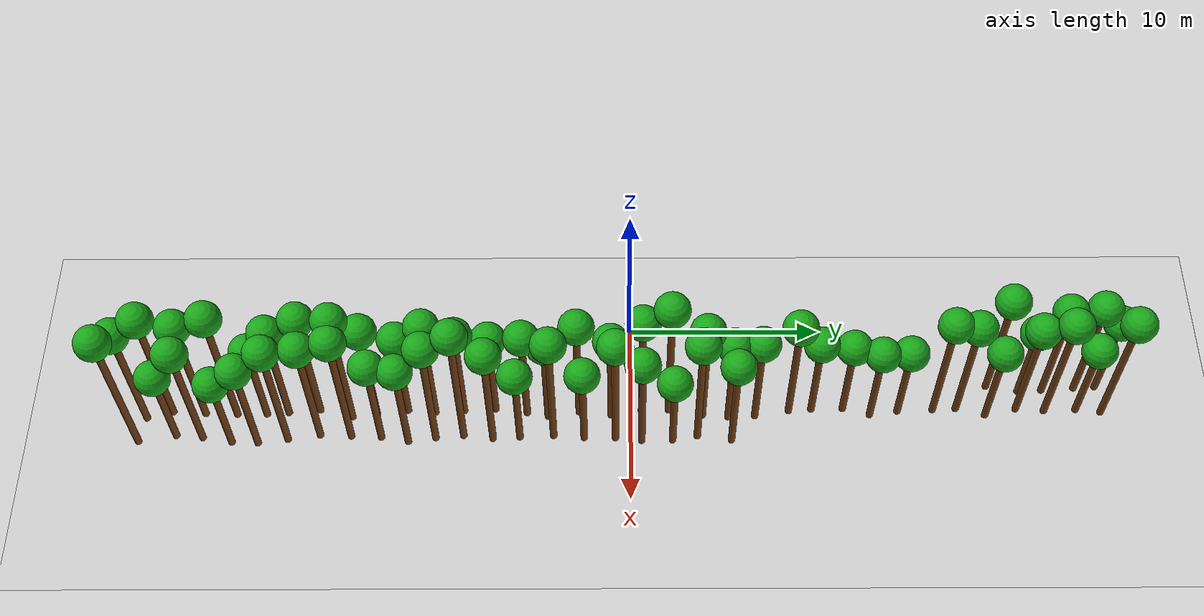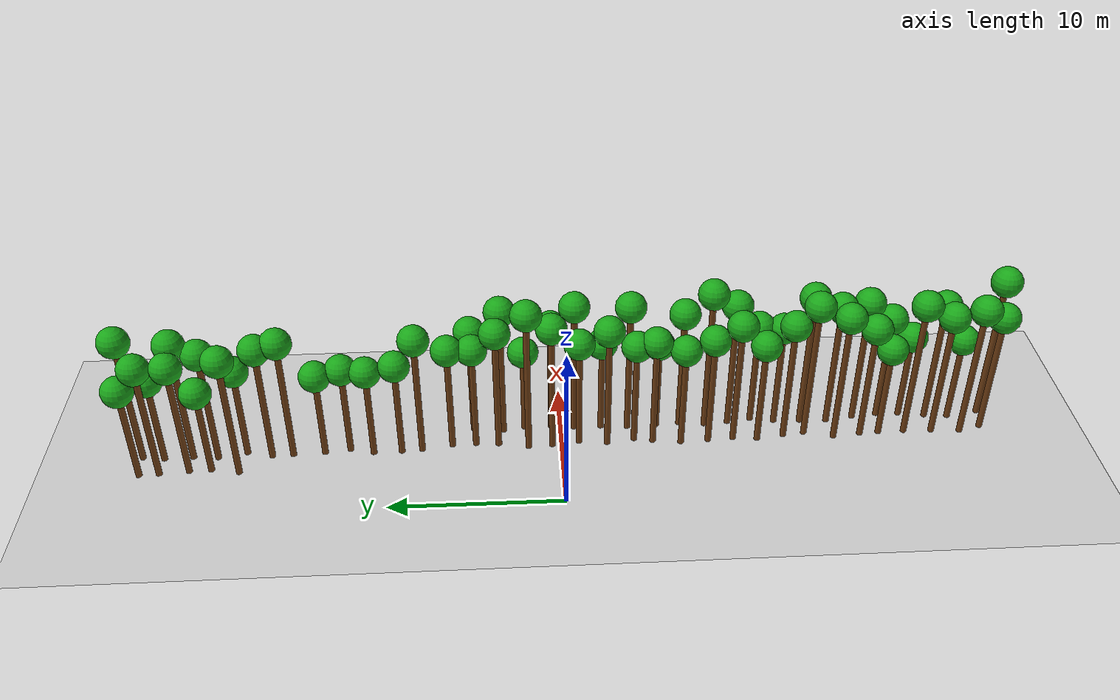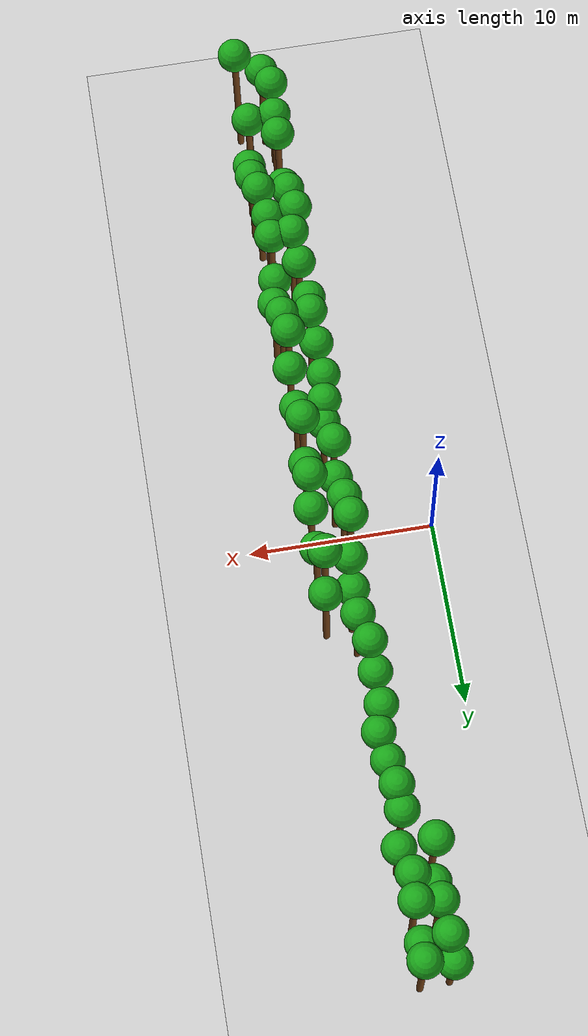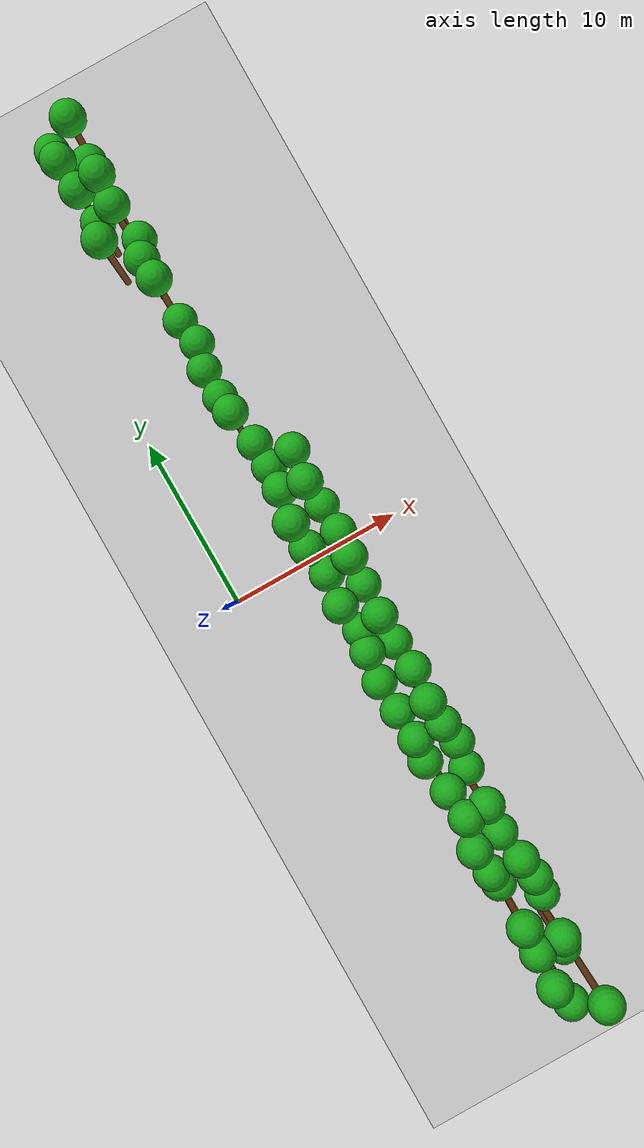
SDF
<sdf version="1.6">
 <world name="forest_world">
  <include><uri>model://sun</uri></include>
  <include><uri>model://ground_plane</uri></include>
  <model name="tree_662">
   <static>true</static>
   <link name="trunk">
    <collision name="collision">
     <pose>3.45 18.60 3.71 0 0 0</pose>
     <geometry><cylinder><radius>0.18</radius><length>7.42</length></cylinder></geometry>
    </collision>
    <visual name="trunk_visual">
     <pose>3.45 18.60 3.71 0 0 0</pose>
     <geometry><cylinder><radius>0.18</radius><length>7.42</length></cylinder></geometry>
     <material><ambient>0.35 0.20 0.05 1</ambient><diffuse>0.45 0.25 0.08 1</diffuse></material>
    </visual>
    <visual name="leaf_visual">
     <pose>3.45 18.60 7.87 0 0 0</pose>
     <geometry><sphere><radius>0.9</radius></sphere></geometry>
     <material><ambient>0.05 0.45 0.05 1</ambient><diffuse>0.10 0.65 0.10 1</diffuse></material>
    </visual>
   </link>
  </model>
  <model name="tree_663">
   <static>true</static>
   <link name="trunk">
    <collision name="collision">
     <pose>3.75 20.22 2.56 0 0 0</pose>
     <geometry><cylinder><radius>0.18</radius><length>5.11</length></cylinder></geometry>
    </collision>
    <visual name="trunk_visual">
     <pose>3.75 20.22 2.56 0 0 0</pose>
     <geometry><cylinder><radius>0.18</radius><length>5.11</length></cylinder></geometry>
     <material><ambient>0.35 0.20 0.05 1</ambient><diffuse>0.45 0.25 0.08 1</diffuse></material>
    </visual>
    <visual name="leaf_visual">
     <pose>3.75 20.22 5.56 0 0 0</pose>
     <geometry><sphere><radius>0.9</radius></sphere></geometry>
     <material><ambient>0.05 0.45 0.05 1</ambient><diffuse>0.10 0.65 0.10 1</diffuse></material>
    </visual>
   </link>
  </model>
  <model name="tree_664">
   <static>true</static>
   <link name="trunk">
    <collision name="collision">
     <pose>3.69 21.47 3.45 0 0 0</pose>
     <geometry><cylinder><radius>0.18</radius><length>6.90</length></cylinder></geometry>
    </collision>
    <visual name="trunk_visual">
     <pose>3.69 21.47 3.45 0 0 0</pose>
     <geometry><cylinder><radius>0.18</radius><length>6.90</length></cylinder></geometry>
     <material><ambient>0.35 0.20 0.05 1</ambient><diffuse>0.45 0.25 0.08 1</diffuse></material>
    </visual>
    <visual name="leaf_visual">
     <pose>3.69 21.47 7.35 0 0 0</pose>
     <geometry><sphere><radius>0.9</radius></sphere></geometry>
     <material><ambient>0.05 0.45 0.05 1</ambient><diffuse>0.10 0.65 0.10 1</diffuse></material>
    </visual>
   </link>
  </model>
  <model name="tree_665">
   <static>true</static>
   <link name="trunk">
    <collision name="collision">
     <pose>3.57 23.16 3.49 0 0 0</pose>
     <geometry><cylinder><radius>0.18</radius><length>6.98</length></cylinder></geometry>
    </collision>
    <visual name="trunk_visual">
     <pose>3.57 23.16 3.49 0 0 0</pose>
     <geometry><cylinder><radius>0.18</radius><length>6.98</length></cylinder></geometry>
     <material><ambient>0.35 0.20 0.05 1</ambient><diffuse>0.45 0.25 0.08 1</diffuse></material>
    </visual>
    <visual name="leaf_visual">
     <pose>3.57 23.16 7.43 0 0 0</pose>
     <geometry><sphere><radius>0.9</radius></sphere></geometry>
     <material><ambient>0.05 0.45 0.05 1</ambient><diffuse>0.10 0.65 0.10 1</diffuse></material>
    </visual>
   </link>
  </model>
  <model name="tree_666">
   <static>true</static>
   <link name="trunk">
    <collision name="collision">
     <pose>3.50 24.28 2.80 0 0 0</pose>
     <geometry><cylinder><radius>0.18</radius><length>5.59</length></cylinder></geometry>
    </collision>
    <visual name="trunk_visual">
     <pose>3.50 24.28 2.80 0 0 0</pose>
     <geometry><cylinder><radius>0.18</radius><length>5.59</length></cylinder></geometry>
     <material><ambient>0.35 0.20 0.05 1</ambient><diffuse>0.45 0.25 0.08 1</diffuse></material>
    </visual>
    <visual name="leaf_visual">
     <pose>3.50 24.28 6.04 0 0 0</pose>
     <geometry><sphere><radius>0.9</radius></sphere></geometry>
     <material><ambient>0.05 0.45 0.05 1</ambient><diffuse>0.10 0.65 0.10 1</diffuse></material>
    </visual>
   </link>
  </model>
  <model name="tree_667">
   <static>true</static>
   <link name="trunk">
    <collision name="collision">
     <pose>5.25 -24.98 3.68 0 0 0</pose>
     <geometry><cylinder><radius>0.18</radius><length>7.36</length></cylinder></geometry>
    </collision>
    <visual name="trunk_visual">
     <pose>5.25 -24.98 3.68 0 0 0</pose>
     <geometry><cylinder><radius>0.18</radius><length>7.36</length></cylinder></geometry>
     <material><ambient>0.35 0.20 0.05 1</ambient><diffuse>0.45 0.25 0.08 1</diffuse></material>
    </visual>
    <visual name="leaf_visual">
     <pose>5.25 -24.98 7.81 0 0 0</pose>
     <geometry><sphere><radius>0.9</radius></sphere></geometry>
     <material><ambient>0.05 0.45 0.05 1</ambient><diffuse>0.10 0.65 0.10 1</diffuse></material>
    </visual>
   </link>
  </model>
  <model name="tree_668">
   <static>true</static>
   <link name="trunk">
    <collision name="collision">
     <pose>4.89 -23.67 4.08 0 0 0</pose>
     <geometry><cylinder><radius>0.18</radius><length>8.15</length></cylinder></geometry>
    </collision>
    <visual name="trunk_visual">
     <pose>4.89 -23.67 4.08 0 0 0</pose>
     <geometry><cylinder><radius>0.18</radius><length>8.15</length></cylinder></geometry>
     <material><ambient>0.35 0.20 0.05 1</ambient><diffuse>0.45 0.25 0.08 1</diffuse></material>
    </visual>
    <visual name="leaf_visual">
     <pose>4.89 -23.67 8.60 0 0 0</pose>
     <geometry><sphere><radius>0.9</radius></sphere></geometry>
     <material><ambient>0.05 0.45 0.05 1</ambient><diffuse>0.10 0.65 0.10 1</diffuse></material>
    </visual>
   </link>
  </model>
  <model name="tree_669">
   <static>true</static>
   <link name="trunk">
    <collision name="collision">
     <pose>4.99 -21.98 3.85 0 0 0</pose>
     <geometry><cylinder><radius>0.18</radius><length>7.69</length></cylinder></geometry>
    </collision>
    <visual name="trunk_visual">
     <pose>4.99 -21.98 3.85 0 0 0</pose>
     <geometry><cylinder><radius>0.18</radius><length>7.69</length></cylinder></geometry>
     <material><ambient>0.35 0.20 0.05 1</ambient><diffuse>0.45 0.25 0.08 1</diffuse></material>
    </visual>
    <visual name="leaf_visual">
     <pose>4.99 -21.98 8.14 0 0 0</pose>
     <geometry><sphere><radius>0.9</radius></sphere></geometry>
     <material><ambient>0.05 0.45 0.05 1</ambient><diffuse>0.10 0.65 0.10 1</diffuse></material>
    </visual>
   </link>
  </model>
  <model name="tree_670">
   <static>true</static>
   <link name="trunk">
    <collision name="collision">
     <pose>5.04 -20.33 4.24 0 0 0</pose>
     <geometry><cylinder><radius>0.18</radius><length>8.48</length></cylinder></geometry>
    </collision>
    <visual name="trunk_visual">
     <pose>5.04 -20.33 4.24 0 0 0</pose>
     <geometry><cylinder><radius>0.18</radius><length>8.48</length></cylinder></geometry>
     <material><ambient>0.35 0.20 0.05 1</ambient><diffuse>0.45 0.25 0.08 1</diffuse></material>
    </visual>
    <visual name="leaf_visual">
     <pose>5.04 -20.33 8.93 0 0 0</pose>
     <geometry><sphere><radius>0.9</radius></sphere></geometry>
     <material><ambient>0.05 0.45 0.05 1</ambient><diffuse>0.10 0.65 0.10 1</diffuse></material>
    </visual>
   </link>
  </model>
  <model name="tree_671">
   <static>true</static>
   <link name="trunk">
    <collision name="collision">
     <pose>5.02 -18.80 2.79 0 0 0</pose>
     <geometry><cylinder><radius>0.18</radius><length>5.57</length></cylinder></geometry>
    </collision>
    <visual name="trunk_visual">
     <pose>5.02 -18.80 2.79 0 0 0</pose>
     <geometry><cylinder><radius>0.18</radius><length>5.57</length></cylinder></geometry>
     <material><ambient>0.35 0.20 0.05 1</ambient><diffuse>0.45 0.25 0.08 1</diffuse></material>
    </visual>
    <visual name="leaf_visual">
     <pose>5.02 -18.80 6.02 0 0 0</pose>
     <geometry><sphere><radius>0.9</radius></sphere></geometry>
     <material><ambient>0.05 0.45 0.05 1</ambient><diffuse>0.10 0.65 0.10 1</diffuse></material>
    </visual>
   </link>
  </model>
  <model name="tree_672">
   <static>true</static>
   <link name="trunk">
    <collision name="collision">
     <pose>4.94 -17.67 3.54 0 0 0</pose>
     <geometry><cylinder><radius>0.18</radius><length>7.09</length></cylinder></geometry>
    </collision>
    <visual name="trunk_visual">
     <pose>4.94 -17.67 3.54 0 0 0</pose>
     <geometry><cylinder><radius>0.18</radius><length>7.09</length></cylinder></geometry>
     <material><ambient>0.35 0.20 0.05 1</ambient><diffuse>0.45 0.25 0.08 1</diffuse></material>
    </visual>
    <visual name="leaf_visual">
     <pose>4.94 -17.67 7.54 0 0 0</pose>
     <geometry><sphere><radius>0.9</radius></sphere></geometry>
     <material><ambient>0.05 0.45 0.05 1</ambient><diffuse>0.10 0.65 0.10 1</diffuse></material>
    </visual>
   </link>
  </model>
  <model name="tree_673">
   <static>true</static>
   <link name="trunk">
    <collision name="collision">
     <pose>4.79 -16.06 3.99 0 0 0</pose>
     <geometry><cylinder><radius>0.18</radius><length>7.99</length></cylinder></geometry>
    </collision>
    <visual name="trunk_visual">
     <pose>4.79 -16.06 3.99 0 0 0</pose>
     <geometry><cylinder><radius>0.18</radius><length>7.99</length></cylinder></geometry>
     <material><ambient>0.35 0.20 0.05 1</ambient><diffuse>0.45 0.25 0.08 1</diffuse></material>
    </visual>
    <visual name="leaf_visual">
     <pose>4.79 -16.06 8.44 0 0 0</pose>
     <geometry><sphere><radius>0.9</radius></sphere></geometry>
     <material><ambient>0.05 0.45 0.05 1</ambient><diffuse>0.10 0.65 0.10 1</diffuse></material>
    </visual>
   </link>
  </model>
  <model name="tree_674">
   <static>true</static>
   <link name="trunk">
    <collision name="collision">
     <pose>5.21 -14.36 4.27 0 0 0</pose>
     <geometry><cylinder><radius>0.18</radius><length>8.54</length></cylinder></geometry>
    </collision>
    <visual name="trunk_visual">
     <pose>5.21 -14.36 4.27 0 0 0</pose>
     <geometry><cylinder><radius>0.18</radius><length>8.54</length></cylinder></geometry>
     <material><ambient>0.35 0.20 0.05 1</ambient><diffuse>0.45 0.25 0.08 1</diffuse></material>
    </visual>
    <visual name="leaf_visual">
     <pose>5.21 -14.36 8.99 0 0 0</pose>
     <geometry><sphere><radius>0.9</radius></sphere></geometry>
     <material><ambient>0.05 0.45 0.05 1</ambient><diffuse>0.10 0.65 0.10 1</diffuse></material>
    </visual>
   </link>
  </model>
  <model name="tree_675">
   <static>true</static>
   <link name="trunk">
    <collision name="collision">
     <pose>5.07 -13.10 3.69 0 0 0</pose>
     <geometry><cylinder><radius>0.18</radius><length>7.39</length></cylinder></geometry>
    </collision>
    <visual name="trunk_visual">
     <pose>5.07 -13.10 3.69 0 0 0</pose>
     <geometry><cylinder><radius>0.18</radius><length>7.39</length></cylinder></geometry>
     <material><ambient>0.35 0.20 0.05 1</ambient><diffuse>0.45 0.25 0.08 1</diffuse></material>
    </visual>
    <visual name="leaf_visual">
     <pose>5.07 -13.10 7.84 0 0 0</pose>
     <geometry><sphere><radius>0.9</radius></sphere></geometry>
     <material><ambient>0.05 0.45 0.05 1</ambient><diffuse>0.10 0.65 0.10 1</diffuse></material>
    </visual>
   </link>
  </model>
  <model name="tree_676">
   <static>true</static>
   <link name="trunk">
    <collision name="collision">
     <pose>4.81 -11.50 3.13 0 0 0</pose>
     <geometry><cylinder><radius>0.18</radius><length>6.27</length></cylinder></geometry>
    </collision>
    <visual name="trunk_visual">
     <pose>4.81 -11.50 3.13 0 0 0</pose>
     <geometry><cylinder><radius>0.18</radius><length>6.27</length></cylinder></geometry>
     <material><ambient>0.35 0.20 0.05 1</ambient><diffuse>0.45 0.25 0.08 1</diffuse></material>
    </visual>
    <visual name="leaf_visual">
     <pose>4.81 -11.50 6.72 0 0 0</pose>
     <geometry><sphere><radius>0.9</radius></sphere></geometry>
     <material><ambient>0.05 0.45 0.05 1</ambient><diffuse>0.10 0.65 0.10 1</diffuse></material>
    </visual>
   </link>
  </model>
  <model name="tree_677">
   <static>true</static>
   <link name="trunk">
    <collision name="collision">
     <pose>4.94 -10.08 3.80 0 0 0</pose>
     <geometry><cylinder><radius>0.18</radius><length>7.59</length></cylinder></geometry>
    </collision>
    <visual name="trunk_visual">
     <pose>4.94 -10.08 3.80 0 0 0</pose>
     <geometry><cylinder><radius>0.18</radius><length>7.59</length></cylinder></geometry>
     <material><ambient>0.35 0.20 0.05 1</ambient><diffuse>0.45 0.25 0.08 1</diffuse></material>
    </visual>
    <visual name="leaf_visual">
     <pose>4.94 -10.08 8.04 0 0 0</pose>
     <geometry><sphere><radius>0.9</radius></sphere></geometry>
     <material><ambient>0.05 0.45 0.05 1</ambient><diffuse>0.10 0.65 0.10 1</diffuse></material>
    </visual>
   </link>
  </model>
  <model name="tree_678">
   <static>true</static>
   <link name="trunk">
    <collision name="collision">
     <pose>4.86 -8.59 3.37 0 0 0</pose>
     <geometry><cylinder><radius>0.18</radius><length>6.73</length></cylinder></geometry>
    </collision>
    <visual name="trunk_visual">
     <pose>4.86 -8.59 3.37 0 0 0</pose>
     <geometry><cylinder><radius>0.18</radius><length>6.73</length></cylinder></geometry>
     <material><ambient>0.35 0.20 0.05 1</ambient><diffuse>0.45 0.25 0.08 1</diffuse></material>
    </visual>
    <visual name="leaf_visual">
     <pose>4.86 -8.59 7.18 0 0 0</pose>
     <geometry><sphere><radius>0.9</radius></sphere></geometry>
     <material><ambient>0.05 0.45 0.05 1</ambient><diffuse>0.10 0.65 0.10 1</diffuse></material>
    </visual>
   </link>
  </model>
  <model name="tree_679">
   <static>true</static>
   <link name="trunk">
    <collision name="collision">
     <pose>4.76 -6.97 3.08 0 0 0</pose>
     <geometry><cylinder><radius>0.18</radius><length>6.17</length></cylinder></geometry>
    </collision>
    <visual name="trunk_visual">
     <pose>4.76 -6.97 3.08 0 0 0</pose>
     <geometry><cylinder><radius>0.18</radius><length>6.17</length></cylinder></geometry>
     <material><ambient>0.35 0.20 0.05 1</ambient><diffuse>0.45 0.25 0.08 1</diffuse></material>
    </visual>
    <visual name="leaf_visual">
     <pose>4.76 -6.97 6.62 0 0 0</pose>
     <geometry><sphere><radius>0.9</radius></sphere></geometry>
     <material><ambient>0.05 0.45 0.05 1</ambient><diffuse>0.10 0.65 0.10 1</diffuse></material>
    </visual>
   </link>
  </model>
  <model name="tree_680">
   <static>true</static>
   <link name="trunk">
    <collision name="collision">
     <pose>4.98 -5.33 3.32 0 0 0</pose>
     <geometry><cylinder><radius>0.18</radius><length>6.65</length></cylinder></geometry>
    </collision>
    <visual name="trunk_visual">
     <pose>4.98 -5.33 3.32 0 0 0</pose>
     <geometry><cylinder><radius>0.18</radius><length>6.65</length></cylinder></geometry>
     <material><ambient>0.35 0.20 0.05 1</ambient><diffuse>0.45 0.25 0.08 1</diffuse></material>
    </visual>
    <visual name="leaf_visual">
     <pose>4.98 -5.33 7.10 0 0 0</pose>
     <geometry><sphere><radius>0.9</radius></sphere></geometry>
     <material><ambient>0.05 0.45 0.05 1</ambient><diffuse>0.10 0.65 0.10 1</diffuse></material>
    </visual>
   </link>
  </model>
  <model name="tree_681">
   <static>true</static>
   <link name="trunk">
    <collision name="collision">
     <pose>5.20 -4.24 3.12 0 0 0</pose>
     <geometry><cylinder><radius>0.18</radius><length>6.25</length></cylinder></geometry>
    </collision>
    <visual name="trunk_visual">
     <pose>5.20 -4.24 3.12 0 0 0</pose>
     <geometry><cylinder><radius>0.18</radius><length>6.25</length></cylinder></geometry>
     <material><ambient>0.35 0.20 0.05 1</ambient><diffuse>0.45 0.25 0.08 1</diffuse></material>
    </visual>
    <visual name="leaf_visual">
     <pose>5.20 -4.24 6.70 0 0 0</pose>
     <geometry><sphere><radius>0.9</radius></sphere></geometry>
     <material><ambient>0.05 0.45 0.05 1</ambient><diffuse>0.10 0.65 0.10 1</diffuse></material>
    </visual>
   </link>
  </model>
  <model name="tree_682">
   <static>true</static>
   <link name="trunk">
    <collision name="collision">
     <pose>4.93 -2.64 3.76 0 0 0</pose>
     <geometry><cylinder><radius>0.18</radius><length>7.53</length></cylinder></geometry>
    </collision>
    <visual name="trunk_visual">
     <pose>4.93 -2.64 3.76 0 0 0</pose>
     <geometry><cylinder><radius>0.18</radius><length>7.53</length></cylinder></geometry>
     <material><ambient>0.35 0.20 0.05 1</ambient><diffuse>0.45 0.25 0.08 1</diffuse></material>
    </visual>
    <visual name="leaf_visual">
     <pose>4.93 -2.64 7.98 0 0 0</pose>
     <geometry><sphere><radius>0.9</radius></sphere></geometry>
     <material><ambient>0.05 0.45 0.05 1</ambient><diffuse>0.10 0.65 0.10 1</diffuse></material>
    </visual>
   </link>
  </model>
  <model name="tree_683">
   <static>true</static>
   <link name="trunk">
    <collision name="collision">
     <pose>5.13 -0.98 3.29 0 0 0</pose>
     <geometry><cylinder><radius>0.18</radius><length>6.58</length></cylinder></geometry>
    </collision>
    <visual name="trunk_visual">
     <pose>5.13 -0.98 3.29 0 0 0</pose>
     <geometry><cylinder><radius>0.18</radius><length>6.58</length></cylinder></geometry>
     <material><ambient>0.35 0.20 0.05 1</ambient><diffuse>0.45 0.25 0.08 1</diffuse></material>
    </visual>
    <visual name="leaf_visual">
     <pose>5.13 -0.98 7.03 0 0 0</pose>
     <geometry><sphere><radius>0.9</radius></sphere></geometry>
     <material><ambient>0.05 0.45 0.05 1</ambient><diffuse>0.10 0.65 0.10 1</diffuse></material>
    </visual>
   </link>
  </model>
  <model name="tree_684">
   <static>true</static>
   <link name="trunk">
    <collision name="collision">
     <pose>4.91 0.59 3.92 0 0 0</pose>
     <geometry><cylinder><radius>0.18</radius><length>7.84</length></cylinder></geometry>
    </collision>
    <visual name="trunk_visual">
     <pose>4.91 0.59 3.92 0 0 0</pose>
     <geometry><cylinder><radius>0.18</radius><length>7.84</length></cylinder></geometry>
     <material><ambient>0.35 0.20 0.05 1</ambient><diffuse>0.45 0.25 0.08 1</diffuse></material>
    </visual>
    <visual name="leaf_visual">
     <pose>4.91 0.59 8.29 0 0 0</pose>
     <geometry><sphere><radius>0.9</radius></sphere></geometry>
     <material><ambient>0.05 0.45 0.05 1</ambient><diffuse>0.10 0.65 0.10 1</diffuse></material>
    </visual>
   </link>
  </model>
  <model name="tree_685">
   <static>true</static>
   <link name="trunk">
    <collision name="collision">
     <pose>4.83 1.98 4.42 0 0 0</pose>
     <geometry><cylinder><radius>0.18</radius><length>8.83</length></cylinder></geometry>
    </collision>
    <visual name="trunk_visual">
     <pose>4.83 1.98 4.42 0 0 0</pose>
     <geometry><cylinder><radius>0.18</radius><length>8.83</length></cylinder></geometry>
     <material><ambient>0.35 0.20 0.05 1</ambient><diffuse>0.45 0.25 0.08 1</diffuse></material>
    </visual>
    <visual name="leaf_visual">
     <pose>4.83 1.98 9.28 0 0 0</pose>
     <geometry><sphere><radius>0.9</radius></sphere></geometry>
     <material><ambient>0.05 0.45 0.05 1</ambient><diffuse>0.10 0.65 0.10 1</diffuse></material>
    </visual>
   </link>
  </model>
  <model name="tree_686">
   <static>true</static>
   <link name="trunk">
    <collision name="collision">
     <pose>5.16 3.73 3.73 0 0 0</pose>
     <geometry><cylinder><radius>0.18</radius><length>7.46</length></cylinder></geometry>
    </collision>
    <visual name="trunk_visual">
     <pose>5.16 3.73 3.73 0 0 0</pose>
     <geometry><cylinder><radius>0.18</radius><length>7.46</length></cylinder></geometry>
     <material><ambient>0.35 0.20 0.05 1</ambient><diffuse>0.45 0.25 0.08 1</diffuse></material>
    </visual>
    <visual name="leaf_visual">
     <pose>5.16 3.73 7.91 0 0 0</pose>
     <geometry><sphere><radius>0.9</radius></sphere></geometry>
     <material><ambient>0.05 0.45 0.05 1</ambient><diffuse>0.10 0.65 0.10 1</diffuse></material>
    </visual>
   </link>
  </model>
  <model name="tree_687">
   <static>true</static>
   <link name="trunk">
    <collision name="collision">
     <pose>5.25 5.06 3.17 0 0 0</pose>
     <geometry><cylinder><radius>0.18</radius><length>6.34</length></cylinder></geometry>
    </collision>
    <visual name="trunk_visual">
     <pose>5.25 5.06 3.17 0 0 0</pose>
     <geometry><cylinder><radius>0.18</radius><length>6.34</length></cylinder></geometry>
     <material><ambient>0.35 0.20 0.05 1</ambient><diffuse>0.45 0.25 0.08 1</diffuse></material>
    </visual>
    <visual name="leaf_visual">
     <pose>5.25 5.06 6.79 0 0 0</pose>
     <geometry><sphere><radius>0.9</radius></sphere></geometry>
     <material><ambient>0.05 0.45 0.05 1</ambient><diffuse>0.10 0.65 0.10 1</diffuse></material>
    </visual>
   </link>
  </model>
  <model name="tree_688">
   <static>true</static>
   <link name="trunk">
    <collision name="collision">
     <pose>5.20 6.44 3.19 0 0 0</pose>
     <geometry><cylinder><radius>0.18</radius><length>6.39</length></cylinder></geometry>
    </collision>
    <visual name="trunk_visual">
     <pose>5.20 6.44 3.19 0 0 0</pose>
     <geometry><cylinder><radius>0.18</radius><length>6.39</length></cylinder></geometry>
     <material><ambient>0.35 0.20 0.05 1</ambient><diffuse>0.45 0.25 0.08 1</diffuse></material>
    </visual>
    <visual name="leaf_visual">
     <pose>5.20 6.44 6.84 0 0 0</pose>
     <geometry><sphere><radius>0.9</radius></sphere></geometry>
     <material><ambient>0.05 0.45 0.05 1</ambient><diffuse>0.10 0.65 0.10 1</diffuse></material>
    </visual>
   </link>
  </model>
  <model name="tree_689">
   <static>true</static>
   <link name="trunk">
    <collision name="collision">
     <pose>4.90 8.20 3.68 0 0 0</pose>
     <geometry><cylinder><radius>0.18</radius><length>7.36</length></cylinder></geometry>
    </collision>
    <visual name="trunk_visual">
     <pose>4.90 8.20 3.68 0 0 0</pose>
     <geometry><cylinder><radius>0.18</radius><length>7.36</length></cylinder></geometry>
     <material><ambient>0.35 0.20 0.05 1</ambient><diffuse>0.45 0.25 0.08 1</diffuse></material>
    </visual>
    <visual name="leaf_visual">
     <pose>4.90 8.20 7.81 0 0 0</pose>
     <geometry><sphere><radius>0.9</radius></sphere></geometry>
     <material><ambient>0.05 0.45 0.05 1</ambient><diffuse>0.10 0.65 0.10 1</diffuse></material>
    </visual>
   </link>
  </model>
  <model name="tree_690">
   <static>true</static>
   <link name="trunk">
    <collision name="collision">
     <pose>4.81 9.38 2.86 0 0 0</pose>
     <geometry><cylinder><radius>0.18</radius><length>5.72</length></cylinder></geometry>
    </collision>
    <visual name="trunk_visual">
     <pose>4.81 9.38 2.86 0 0 0</pose>
     <geometry><cylinder><radius>0.18</radius><length>5.72</length></cylinder></geometry>
     <material><ambient>0.35 0.20 0.05 1</ambient><diffuse>0.45 0.25 0.08 1</diffuse></material>
    </visual>
    <visual name="leaf_visual">
     <pose>4.81 9.38 6.17 0 0 0</pose>
     <geometry><sphere><radius>0.9</radius></sphere></geometry>
     <material><ambient>0.05 0.45 0.05 1</ambient><diffuse>0.10 0.65 0.10 1</diffuse></material>
    </visual>
   </link>
  </model>
  <model name="tree_691">
   <static>true</static>
   <link name="trunk">
    <collision name="collision">
     <pose>4.78 11.01 2.70 0 0 0</pose>
     <geometry><cylinder><radius>0.18</radius><length>5.40</length></cylinder></geometry>
    </collision>
    <visual name="trunk_visual">
     <pose>4.78 11.01 2.70 0 0 0</pose>
     <geometry><cylinder><radius>0.18</radius><length>5.40</length></cylinder></geometry>
     <material><ambient>0.35 0.20 0.05 1</ambient><diffuse>0.45 0.25 0.08 1</diffuse></material>
    </visual>
    <visual name="leaf_visual">
     <pose>4.78 11.01 5.85 0 0 0</pose>
     <geometry><sphere><radius>0.9</radius></sphere></geometry>
     <material><ambient>0.05 0.45 0.05 1</ambient><diffuse>0.10 0.65 0.10 1</diffuse></material>
    </visual>
   </link>
  </model>
  <model name="tree_692">
   <static>true</static>
   <link name="trunk">
    <collision name="collision">
     <pose>5.15 12.39 2.67 0 0 0</pose>
     <geometry><cylinder><radius>0.18</radius><length>5.35</length></cylinder></geometry>
    </collision>
    <visual name="trunk_visual">
     <pose>5.15 12.39 2.67 0 0 0</pose>
     <geometry><cylinder><radius>0.18</radius><length>5.35</length></cylinder></geometry>
     <material><ambient>0.35 0.20 0.05 1</ambient><diffuse>0.45 0.25 0.08 1</diffuse></material>
    </visual>
    <visual name="leaf_visual">
     <pose>5.15 12.39 5.80 0 0 0</pose>
     <geometry><sphere><radius>0.9</radius></sphere></geometry>
     <material><ambient>0.05 0.45 0.05 1</ambient><diffuse>0.10 0.65 0.10 1</diffuse></material>
    </visual>
   </link>
  </model>
  <model name="tree_693">
   <static>true</static>
   <link name="trunk">
    <collision name="collision">
     <pose>4.94 13.84 2.56 0 0 0</pose>
     <geometry><cylinder><radius>0.18</radius><length>5.11</length></cylinder></geometry>
    </collision>
    <visual name="trunk_visual">
     <pose>4.94 13.84 2.56 0 0 0</pose>
     <geometry><cylinder><radius>0.18</radius><length>5.11</length></cylinder></geometry>
     <material><ambient>0.35 0.20 0.05 1</ambient><diffuse>0.45 0.25 0.08 1</diffuse></material>
    </visual>
    <visual name="leaf_visual">
     <pose>4.94 13.84 5.56 0 0 0</pose>
     <geometry><sphere><radius>0.9</radius></sphere></geometry>
     <material><ambient>0.05 0.45 0.05 1</ambient><diffuse>0.10 0.65 0.10 1</diffuse></material>
    </visual>
   </link>
  </model>
  <model name="tree_694">
   <static>true</static>
   <link name="trunk">
    <collision name="collision">
     <pose>4.86 15.67 3.74 0 0 0</pose>
     <geometry><cylinder><radius>0.18</radius><length>7.48</length></cylinder></geometry>
    </collision>
    <visual name="trunk_visual">
     <pose>4.86 15.67 3.74 0 0 0</pose>
     <geometry><cylinder><radius>0.18</radius><length>7.48</length></cylinder></geometry>
     <material><ambient>0.35 0.20 0.05 1</ambient><diffuse>0.45 0.25 0.08 1</diffuse></material>
    </visual>
    <visual name="leaf_visual">
     <pose>4.86 15.67 7.93 0 0 0</pose>
     <geometry><sphere><radius>0.9</radius></sphere></geometry>
     <material><ambient>0.05 0.45 0.05 1</ambient><diffuse>0.10 0.65 0.10 1</diffuse></material>
    </visual>
   </link>
  </model>
  <model name="tree_695">
   <static>true</static>
   <link name="trunk">
    <collision name="collision">
     <pose>4.80 16.88 3.57 0 0 0</pose>
     <geometry><cylinder><radius>0.18</radius><length>7.14</length></cylinder></geometry>
    </collision>
    <visual name="trunk_visual">
     <pose>4.80 16.88 3.57 0 0 0</pose>
     <geometry><cylinder><radius>0.18</radius><length>7.14</length></cylinder></geometry>
     <material><ambient>0.35 0.20 0.05 1</ambient><diffuse>0.45 0.25 0.08 1</diffuse></material>
    </visual>
    <visual name="leaf_visual">
     <pose>4.80 16.88 7.59 0 0 0</pose>
     <geometry><sphere><radius>0.9</radius></sphere></geometry>
     <material><ambient>0.05 0.45 0.05 1</ambient><diffuse>0.10 0.65 0.10 1</diffuse></material>
    </visual>
   </link>
  </model>
  <model name="tree_696">
   <static>true</static>
   <link name="trunk">
    <collision name="collision">
     <pose>5.18 18.36 2.72 0 0 0</pose>
     <geometry><cylinder><radius>0.18</radius><length>5.45</length></cylinder></geometry>
    </collision>
    <visual name="trunk_visual">
     <pose>5.18 18.36 2.72 0 0 0</pose>
     <geometry><cylinder><radius>0.18</radius><length>5.45</length></cylinder></geometry>
     <material><ambient>0.35 0.20 0.05 1</ambient><diffuse>0.45 0.25 0.08 1</diffuse></material>
    </visual>
    <visual name="leaf_visual">
     <pose>5.18 18.36 5.90 0 0 0</pose>
     <geometry><sphere><radius>0.9</radius></sphere></geometry>
     <material><ambient>0.05 0.45 0.05 1</ambient><diffuse>0.10 0.65 0.10 1</diffuse></material>
    </visual>
   </link>
  </model>
  <model name="tree_697">
   <static>true</static>
   <link name="trunk">
    <collision name="collision">
     <pose>4.82 19.99 3.46 0 0 0</pose>
     <geometry><cylinder><radius>0.18</radius><length>6.93</length></cylinder></geometry>
    </collision>
    <visual name="trunk_visual">
     <pose>4.82 19.99 3.46 0 0 0</pose>
     <geometry><cylinder><radius>0.18</radius><length>6.93</length></cylinder></geometry>
     <material><ambient>0.35 0.20 0.05 1</ambient><diffuse>0.45 0.25 0.08 1</diffuse></material>
    </visual>
    <visual name="leaf_visual">
     <pose>4.82 19.99 7.38 0 0 0</pose>
     <geometry><sphere><radius>0.9</radius></sphere></geometry>
     <material><ambient>0.05 0.45 0.05 1</ambient><diffuse>0.10 0.65 0.10 1</diffuse></material>
    </visual>
   </link>
  </model>
  <model name="tree_698">
   <static>true</static>
   <link name="trunk">
    <collision name="collision">
     <pose>4.94 21.44 3.77 0 0 0</pose>
     <geometry><cylinder><radius>0.18</radius><length>7.54</length></cylinder></geometry>
    </collision>
    <visual name="trunk_visual">
     <pose>4.94 21.44 3.77 0 0 0</pose>
     <geometry><cylinder><radius>0.18</radius><length>7.54</length></cylinder></geometry>
     <material><ambient>0.35 0.20 0.05 1</ambient><diffuse>0.45 0.25 0.08 1</diffuse></material>
    </visual>
    <visual name="leaf_visual">
     <pose>4.94 21.44 7.99 0 0 0</pose>
     <geometry><sphere><radius>0.9</radius></sphere></geometry>
     <material><ambient>0.05 0.45 0.05 1</ambient><diffuse>0.10 0.65 0.10 1</diffuse></material>
    </visual>
   </link>
  </model>
  <model name="tree_699">
   <static>true</static>
   <link name="trunk">
    <collision name="collision">
     <pose>4.87 23.09 2.60 0 0 0</pose>
     <geometry><cylinder><radius>0.18</radius><length>5.20</length></cylinder></geometry>
    </collision>
    <visual name="trunk_visual">
     <pose>4.87 23.09 2.60 0 0 0</pose>
     <geometry><cylinder><radius>0.18</radius><length>5.20</length></cylinder></geometry>
     <material><ambient>0.35 0.20 0.05 1</ambient><diffuse>0.45 0.25 0.08 1</diffuse></material>
    </visual>
    <visual name="leaf_visual">
     <pose>4.87 23.09 5.65 0 0 0</pose>
     <geometry><sphere><radius>0.9</radius></sphere></geometry>
     <material><ambient>0.05 0.45 0.05 1</ambient><diffuse>0.10 0.65 0.10 1</diffuse></material>
    </visual>
   </link>
  </model>
  <model name="tree_700">
   <static>true</static>
   <link name="trunk">
    <collision name="collision">
     <pose>5.04 24.36 3.89 0 0 0</pose>
     <geometry><cylinder><radius>0.18</radius><length>7.78</length></cylinder></geometry>
    </collision>
    <visual name="trunk_visual">
     <pose>5.04 24.36 3.89 0 0 0</pose>
     <geometry><cylinder><radius>0.18</radius><length>7.78</length></cylinder></geometry>
     <material><ambient>0.35 0.20 0.05 1</ambient><diffuse>0.45 0.25 0.08 1</diffuse></material>
    </visual>
    <visual name="leaf_visual">
     <pose>5.04 24.36 8.23 0 0 0</pose>
     <geometry><sphere><radius>0.9</radius></sphere></geometry>
     <material><ambient>0.05 0.45 0.05 1</ambient><diffuse>0.10 0.65 0.10 1</diffuse></material>
    </visual>
   </link>
  </model>
  <model name="tree_701">
   <static>true</static>
   <link name="trunk">
    <collision name="collision">
     <pose>6.64 -25.24 4.43 0 0 0</pose>
     <geometry><cylinder><radius>0.18</radius><length>8.86</length></cylinder></geometry>
    </collision>
    <visual name="trunk_visual">
     <pose>6.64 -25.24 4.43 0 0 0</pose>
     <geometry><cylinder><radius>0.18</radius><length>8.86</length></cylinder></geometry>
     <material><ambient>0.35 0.20 0.05 1</ambient><diffuse>0.45 0.25 0.08 1</diffuse></material>
    </visual>
    <visual name="leaf_visual">
     <pose>6.64 -25.24 9.31 0 0 0</pose>
     <geometry><sphere><radius>0.9</radius></sphere></geometry>
     <material><ambient>0.05 0.45 0.05 1</ambient><diffuse>0.10 0.65 0.10 1</diffuse></material>
    </visual>
   </link>
  </model>
  <model name="tree_702">
   <static>true</static>
   <link name="trunk">
    <collision name="collision">
     <pose>6.29 -23.33 2.58 0 0 0</pose>
     <geometry><cylinder><radius>0.18</radius><length>5.17</length></cylinder></geometry>
    </collision>
    <visual name="trunk_visual">
     <pose>6.29 -23.33 2.58 0 0 0</pose>
     <geometry><cylinder><radius>0.18</radius><length>5.17</length></cylinder></geometry>
     <material><ambient>0.35 0.20 0.05 1</ambient><diffuse>0.45 0.25 0.08 1</diffuse></material>
    </visual>
    <visual name="leaf_visual">
     <pose>6.29 -23.33 5.62 0 0 0</pose>
     <geometry><sphere><radius>0.9</radius></sphere></geometry>
     <material><ambient>0.05 0.45 0.05 1</ambient><diffuse>0.10 0.65 0.10 1</diffuse></material>
    </visual>
   </link>
  </model>
  <model name="tree_703">
   <static>true</static>
   <link name="trunk">
    <collision name="collision">
     <pose>6.43 -21.96 3.76 0 0 0</pose>
     <geometry><cylinder><radius>0.18</radius><length>7.52</length></cylinder></geometry>
    </collision>
    <visual name="trunk_visual">
     <pose>6.43 -21.96 3.76 0 0 0</pose>
     <geometry><cylinder><radius>0.18</radius><length>7.52</length></cylinder></geometry>
     <material><ambient>0.35 0.20 0.05 1</ambient><diffuse>0.45 0.25 0.08 1</diffuse></material>
    </visual>
    <visual name="leaf_visual">
     <pose>6.43 -21.96 7.97 0 0 0</pose>
     <geometry><sphere><radius>0.9</radius></sphere></geometry>
     <material><ambient>0.05 0.45 0.05 1</ambient><diffuse>0.10 0.65 0.10 1</diffuse></material>
    </visual>
   </link>
  </model>
  <model name="tree_704">
   <static>true</static>
   <link name="trunk">
    <collision name="collision">
     <pose>6.69 -20.44 2.60 0 0 0</pose>
     <geometry><cylinder><radius>0.18</radius><length>5.20</length></cylinder></geometry>
    </collision>
    <visual name="trunk_visual">
     <pose>6.69 -20.44 2.60 0 0 0</pose>
     <geometry><cylinder><radius>0.18</radius><length>5.20</length></cylinder></geometry>
     <material><ambient>0.35 0.20 0.05 1</ambient><diffuse>0.45 0.25 0.08 1</diffuse></material>
    </visual>
    <visual name="leaf_visual">
     <pose>6.69 -20.44 5.65 0 0 0</pose>
     <geometry><sphere><radius>0.9</radius></sphere></geometry>
     <material><ambient>0.05 0.45 0.05 1</ambient><diffuse>0.10 0.65 0.10 1</diffuse></material>
    </visual>
   </link>
  </model>
  <model name="tree_705">
   <static>true</static>
   <link name="trunk">
    <collision name="collision">
     <pose>6.74 -19.09 3.24 0 0 0</pose>
     <geometry><cylinder><radius>0.18</radius><length>6.49</length></cylinder></geometry>
    </collision>
    <visual name="trunk_visual">
     <pose>6.74 -19.09 3.24 0 0 0</pose>
     <geometry><cylinder><radius>0.18</radius><length>6.49</length></cylinder></geometry>
     <material><ambient>0.35 0.20 0.05 1</ambient><diffuse>0.45 0.25 0.08 1</diffuse></material>
    </visual>
    <visual name="leaf_visual">
     <pose>6.74 -19.09 6.94 0 0 0</pose>
     <geometry><sphere><radius>0.9</radius></sphere></geometry>
     <material><ambient>0.05 0.45 0.05 1</ambient><diffuse>0.10 0.65 0.10 1</diffuse></material>
    </visual>
   </link>
  </model>
  <model name="tree_706">
   <static>true</static>
   <link name="trunk">
    <collision name="collision">
     <pose>6.54 -17.57 3.90 0 0 0</pose>
     <geometry><cylinder><radius>0.18</radius><length>7.80</length></cylinder></geometry>
    </collision>
    <visual name="trunk_visual">
     <pose>6.54 -17.57 3.90 0 0 0</pose>
     <geometry><cylinder><radius>0.18</radius><length>7.80</length></cylinder></geometry>
     <material><ambient>0.35 0.20 0.05 1</ambient><diffuse>0.45 0.25 0.08 1</diffuse></material>
    </visual>
    <visual name="leaf_visual">
     <pose>6.54 -17.57 8.25 0 0 0</pose>
     <geometry><sphere><radius>0.9</radius></sphere></geometry>
     <material><ambient>0.05 0.45 0.05 1</ambient><diffuse>0.10 0.65 0.10 1</diffuse></material>
    </visual>
   </link>
  </model>
  <model name="tree_707">
   <static>true</static>
   <link name="trunk">
    <collision name="collision">
     <pose>6.29 -15.93 3.85 0 0 0</pose>
     <geometry><cylinder><radius>0.18</radius><length>7.70</length></cylinder></geometry>
    </collision>
    <visual name="trunk_visual">
     <pose>6.29 -15.93 3.85 0 0 0</pose>
     <geometry><cylinder><radius>0.18</radius><length>7.70</length></cylinder></geometry>
     <material><ambient>0.35 0.20 0.05 1</ambient><diffuse>0.45 0.25 0.08 1</diffuse></material>
    </visual>
    <visual name="leaf_visual">
     <pose>6.29 -15.93 8.15 0 0 0</pose>
     <geometry><sphere><radius>0.9</radius></sphere></geometry>
     <material><ambient>0.05 0.45 0.05 1</ambient><diffuse>0.10 0.65 0.10 1</diffuse></material>
    </visual>
   </link>
  </model>
  <model name="tree_708">
   <static>true</static>
   <link name="trunk">
    <collision name="collision">
     <pose>6.35 -14.33 4.20 0 0 0</pose>
     <geometry><cylinder><radius>0.18</radius><length>8.39</length></cylinder></geometry>
    </collision>
    <visual name="trunk_visual">
     <pose>6.35 -14.33 4.20 0 0 0</pose>
     <geometry><cylinder><radius>0.18</radius><length>8.39</length></cylinder></geometry>
     <material><ambient>0.35 0.20 0.05 1</ambient><diffuse>0.45 0.25 0.08 1</diffuse></material>
    </visual>
    <visual name="leaf_visual">
     <pose>6.35 -14.33 8.84 0 0 0</pose>
     <geometry><sphere><radius>0.9</radius></sphere></geometry>
     <material><ambient>0.05 0.45 0.05 1</ambient><diffuse>0.10 0.65 0.10 1</diffuse></material>
    </visual>
   </link>
  </model>
  <model name="tree_709">
   <static>true</static>
   <link name="trunk">
    <collision name="collision">
     <pose>6.43 -12.78 3.15 0 0 0</pose>
     <geometry><cylinder><radius>0.18</radius><length>6.30</length></cylinder></geometry>
    </collision>
    <visual name="trunk_visual">
     <pose>6.43 -12.78 3.15 0 0 0</pose>
     <geometry><cylinder><radius>0.18</radius><length>6.30</length></cylinder></geometry>
     <material><ambient>0.35 0.20 0.05 1</ambient><diffuse>0.45 0.25 0.08 1</diffuse></material>
    </visual>
    <visual name="leaf_visual">
     <pose>6.43 -12.78 6.75 0 0 0</pose>
     <geometry><sphere><radius>0.9</radius></sphere></geometry>
     <material><ambient>0.05 0.45 0.05 1</ambient><diffuse>0.10 0.65 0.10 1</diffuse></material>
    </visual>
   </link>
  </model>
  <model name="tree_710">
   <static>true</static>
   <link name="trunk">
    <collision name="collision">
     <pose>6.68 -11.39 3.15 0 0 0</pose>
     <geometry><cylinder><radius>0.18</radius><length>6.31</length></cylinder></geometry>
    </collision>
    <visual name="trunk_visual">
     <pose>6.68 -11.39 3.15 0 0 0</pose>
     <geometry><cylinder><radius>0.18</radius><length>6.31</length></cylinder></geometry>
     <material><ambient>0.35 0.20 0.05 1</ambient><diffuse>0.45 0.25 0.08 1</diffuse></material>
    </visual>
    <visual name="leaf_visual">
     <pose>6.68 -11.39 6.76 0 0 0</pose>
     <geometry><sphere><radius>0.9</radius></sphere></geometry>
     <material><ambient>0.05 0.45 0.05 1</ambient><diffuse>0.10 0.65 0.10 1</diffuse></material>
    </visual>
   </link>
  </model>
  <model name="tree_711">
   <static>true</static>
   <link name="trunk">
    <collision name="collision">
     <pose>6.46 -9.99 3.98 0 0 0</pose>
     <geometry><cylinder><radius>0.18</radius><length>7.95</length></cylinder></geometry>
    </collision>
    <visual name="trunk_visual">
     <pose>6.46 -9.99 3.98 0 0 0</pose>
     <geometry><cylinder><radius>0.18</radius><length>7.95</length></cylinder></geometry>
     <material><ambient>0.35 0.20 0.05 1</ambient><diffuse>0.45 0.25 0.08 1</diffuse></material>
    </visual>
    <visual name="leaf_visual">
     <pose>6.46 -9.99 8.40 0 0 0</pose>
     <geometry><sphere><radius>0.9</radius></sphere></geometry>
     <material><ambient>0.05 0.45 0.05 1</ambient><diffuse>0.10 0.65 0.10 1</diffuse></material>
    </visual>
   </link>
  </model>
  <model name="tree_712">
   <static>true</static>
   <link name="trunk">
    <collision name="collision">
     <pose>6.33 -8.56 4.42 0 0 0</pose>
     <geometry><cylinder><radius>0.18</radius><length>8.84</length></cylinder></geometry>
    </collision>
    <visual name="trunk_visual">
     <pose>6.33 -8.56 4.42 0 0 0</pose>
     <geometry><cylinder><radius>0.18</radius><length>8.84</length></cylinder></geometry>
     <material><ambient>0.35 0.20 0.05 1</ambient><diffuse>0.45 0.25 0.08 1</diffuse></material>
    </visual>
    <visual name="leaf_visual">
     <pose>6.33 -8.56 9.29 0 0 0</pose>
     <geometry><sphere><radius>0.9</radius></sphere></geometry>
     <material><ambient>0.05 0.45 0.05 1</ambient><diffuse>0.10 0.65 0.10 1</diffuse></material>
    </visual>
   </link>
  </model>
  <model name="tree_713">
   <static>true</static>
   <link name="trunk">
    <collision name="collision">
     <pose>6.51 -7.05 3.72 0 0 0</pose>
     <geometry><cylinder><radius>0.18</radius><length>7.45</length></cylinder></geometry>
    </collision>
    <visual name="trunk_visual">
     <pose>6.51 -7.05 3.72 0 0 0</pose>
     <geometry><cylinder><radius>0.18</radius><length>7.45</length></cylinder></geometry>
     <material><ambient>0.35 0.20 0.05 1</ambient><diffuse>0.45 0.25 0.08 1</diffuse></material>
    </visual>
    <visual name="leaf_visual">
     <pose>6.51 -7.05 7.90 0 0 0</pose>
     <geometry><sphere><radius>0.9</radius></sphere></geometry>
     <material><ambient>0.05 0.45 0.05 1</ambient><diffuse>0.10 0.65 0.10 1</diffuse></material>
    </visual>
   </link>
  </model>
  <model name="tree_714">
   <static>true</static>
   <link name="trunk">
    <collision name="collision">
     <pose>6.43 -5.67 2.72 0 0 0</pose>
     <geometry><cylinder><radius>0.18</radius><length>5.44</length></cylinder></geometry>
    </collision>
    <visual name="trunk_visual">
     <pose>6.43 -5.67 2.72 0 0 0</pose>
     <geometry><cylinder><radius>0.18</radius><length>5.44</length></cylinder></geometry>
     <material><ambient>0.35 0.20 0.05 1</ambient><diffuse>0.45 0.25 0.08 1</diffuse></material>
    </visual>
    <visual name="leaf_visual">
     <pose>6.43 -5.67 5.89 0 0 0</pose>
     <geometry><sphere><radius>0.9</radius></sphere></geometry>
     <material><ambient>0.05 0.45 0.05 1</ambient><diffuse>0.10 0.65 0.10 1</diffuse></material>
    </visual>
   </link>
  </model>
  <model name="tree_715">
   <static>true</static>
   <link name="trunk">
    <collision name="collision">
     <pose>6.35 -3.94 4.07 0 0 0</pose>
     <geometry><cylinder><radius>0.18</radius><length>8.14</length></cylinder></geometry>
    </collision>
    <visual name="trunk_visual">
     <pose>6.35 -3.94 4.07 0 0 0</pose>
     <geometry><cylinder><radius>0.18</radius><length>8.14</length></cylinder></geometry>
     <material><ambient>0.35 0.20 0.05 1</ambient><diffuse>0.45 0.25 0.08 1</diffuse></material>
    </visual>
    <visual name="leaf_visual">
     <pose>6.35 -3.94 8.59 0 0 0</pose>
     <geometry><sphere><radius>0.9</radius></sphere></geometry>
     <material><ambient>0.05 0.45 0.05 1</ambient><diffuse>0.10 0.65 0.10 1</diffuse></material>
    </visual>
   </link>
  </model>
  <model name="tree_716">
   <static>true</static>
   <link name="trunk">
    <collision name="collision">
     <pose>6.47 -2.37 2.80 0 0 0</pose>
     <geometry><cylinder><radius>0.18</radius><length>5.60</length></cylinder></geometry>
    </collision>
    <visual name="trunk_visual">
     <pose>6.47 -2.37 2.80 0 0 0</pose>
     <geometry><cylinder><radius>0.18</radius><length>5.60</length></cylinder></geometry>
     <material><ambient>0.35 0.20 0.05 1</ambient><diffuse>0.45 0.25 0.08 1</diffuse></material>
    </visual>
    <visual name="leaf_visual">
     <pose>6.47 -2.37 6.05 0 0 0</pose>
     <geometry><sphere><radius>0.9</radius></sphere></geometry>
     <material><ambient>0.05 0.45 0.05 1</ambient><diffuse>0.10 0.65 0.10 1</diffuse></material>
    </visual>
   </link>
  </model>
  <model name="tree_717">
   <static>true</static>
   <link name="trunk">
    <collision name="collision">
     <pose>6.48 -0.76 4.08 0 0 0</pose>
     <geometry><cylinder><radius>0.18</radius><length>8.17</length></cylinder></geometry>
    </collision>
    <visual name="trunk_visual">
     <pose>6.48 -0.76 4.08 0 0 0</pose>
     <geometry><cylinder><radius>0.18</radius><length>8.17</length></cylinder></geometry>
     <material><ambient>0.35 0.20 0.05 1</ambient><diffuse>0.45 0.25 0.08 1</diffuse></material>
    </visual>
    <visual name="leaf_visual">
     <pose>6.48 -0.76 8.62 0 0 0</pose>
     <geometry><sphere><radius>0.9</radius></sphere></geometry>
     <material><ambient>0.05 0.45 0.05 1</ambient><diffuse>0.10 0.65 0.10 1</diffuse></material>
    </visual>
   </link>
  </model>
  <model name="tree_718">
   <static>true</static>
   <link name="trunk">
    <collision name="collision">
     <pose>6.65 0.58 3.41 0 0 0</pose>
     <geometry><cylinder><radius>0.18</radius><length>6.82</length></cylinder></geometry>
    </collision>
    <visual name="trunk_visual">
     <pose>6.65 0.58 3.41 0 0 0</pose>
     <geometry><cylinder><radius>0.18</radius><length>6.82</length></cylinder></geometry>
     <material><ambient>0.35 0.20 0.05 1</ambient><diffuse>0.45 0.25 0.08 1</diffuse></material>
    </visual>
    <visual name="leaf_visual">
     <pose>6.65 0.58 7.27 0 0 0</pose>
     <geometry><sphere><radius>0.9</radius></sphere></geometry>
     <material><ambient>0.05 0.45 0.05 1</ambient><diffuse>0.10 0.65 0.10 1</diffuse></material>
    </visual>
   </link>
  </model>
  <model name="tree_719">
   <static>true</static>
   <link name="trunk">
    <collision name="collision">
     <pose>6.63 2.17 2.54 0 0 0</pose>
     <geometry><cylinder><radius>0.18</radius><length>5.08</length></cylinder></geometry>
    </collision>
    <visual name="trunk_visual">
     <pose>6.63 2.17 2.54 0 0 0</pose>
     <geometry><cylinder><radius>0.18</radius><length>5.08</length></cylinder></geometry>
     <material><ambient>0.35 0.20 0.05 1</ambient><diffuse>0.45 0.25 0.08 1</diffuse></material>
    </visual>
    <visual name="leaf_visual">
     <pose>6.63 2.17 5.53 0 0 0</pose>
     <geometry><sphere><radius>0.9</radius></sphere></geometry>
     <material><ambient>0.05 0.45 0.05 1</ambient><diffuse>0.10 0.65 0.10 1</diffuse></material>
    </visual>
   </link>
  </model>
  <model name="tree_720">
   <static>true</static>
   <link name="trunk">
    <collision name="collision">
     <pose>6.39 3.44 4.04 0 0 0</pose>
     <geometry><cylinder><radius>0.18</radius><length>8.08</length></cylinder></geometry>
    </collision>
    <visual name="trunk_visual">
     <pose>6.39 3.44 4.04 0 0 0</pose>
     <geometry><cylinder><radius>0.18</radius><length>8.08</length></cylinder></geometry>
     <material><ambient>0.35 0.20 0.05 1</ambient><diffuse>0.45 0.25 0.08 1</diffuse></material>
    </visual>
    <visual name="leaf_visual">
     <pose>6.39 3.44 8.53 0 0 0</pose>
     <geometry><sphere><radius>0.9</radius></sphere></geometry>
     <material><ambient>0.05 0.45 0.05 1</ambient><diffuse>0.10 0.65 0.10 1</diffuse></material>
    </visual>
   </link>
  </model>
  <model name="tree_721">
   <static>true</static>
   <link name="trunk">
    <collision name="collision">
     <pose>6.64 5.19 3.31 0 0 0</pose>
     <geometry><cylinder><radius>0.18</radius><length>6.62</length></cylinder></geometry>
    </collision>
    <visual name="trunk_visual">
     <pose>6.64 5.19 3.31 0 0 0</pose>
     <geometry><cylinder><radius>0.18</radius><length>6.62</length></cylinder></geometry>
     <material><ambient>0.35 0.20 0.05 1</ambient><diffuse>0.45 0.25 0.08 1</diffuse></material>
    </visual>
    <visual name="leaf_visual">
     <pose>6.64 5.19 7.07 0 0 0</pose>
     <geometry><sphere><radius>0.9</radius></sphere></geometry>
     <material><ambient>0.05 0.45 0.05 1</ambient><diffuse>0.10 0.65 0.10 1</diffuse></material>
    </visual>
   </link>
  </model>
 </world>
</sdf>
